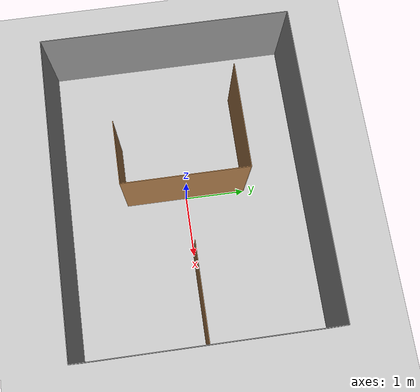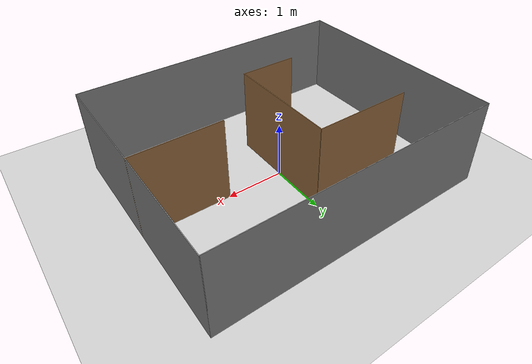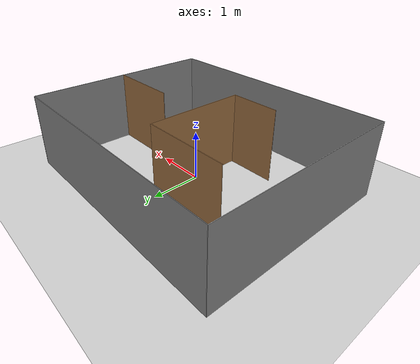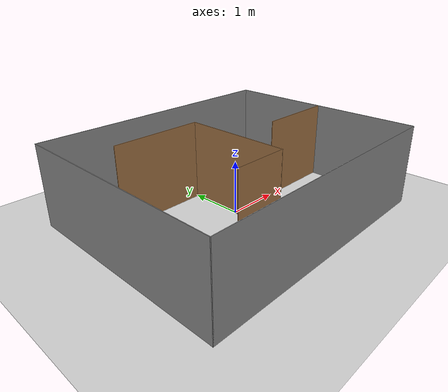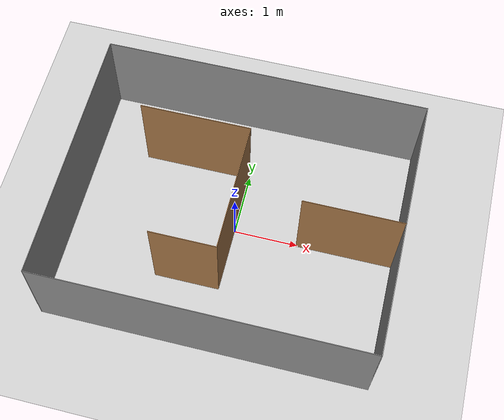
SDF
<sdf version="1.7">
 <world name="labaux">
  <light name="sun" type="directional">
   <pose>0 0 10 0 -0 0</pose>
   <diffuse>0.8 0.8 0.8 1</diffuse>
   <specular>0.2 0.2 0.2 1</specular>
   <attenuation>
    <range>1000</range>
    <constant>0.9</constant>
    <linear>0.01</linear>
    <quadratic>0.001</quadratic>
   </attenuation>
   <direction>-0.5 0.1 -0.9</direction>
   <spot><inner_angle>0</inner_angle><outer_angle>0</outer_angle><falloff>0</falloff></spot>
  </light>
  <model name="ground_plane">
   <static>1</static>
   <link name="link">
    <collision name="collision">
     <geometry><plane><normal>0 0 1</normal><size>100 100</size></plane></geometry>
     <surface>
      <contact><collide_bitmask>65535</collide_bitmask></contact>
      <friction><ode><mu>100</mu><mu2>50</mu2></ode></friction>
     </surface>
    </collision>
    <visual name="visual">
     <cast_shadows>0</cast_shadows>
     <geometry><plane><normal>0 0 1</normal><size>100 100</size></plane></geometry>
     <material>
      <script><uri>file://media/materials/scripts/gazebo.material</uri><name>Gazebo/Grey</name></script>
     </material>
    </visual>
   </link>
  </model>
  <gravity>0 0 -9.8</gravity>
  <magnetic_field>6e-06 2.3e-05 -4.2e-05</magnetic_field>
  <atmosphere type="adiabatic"/>
  <physics type="ode">
   <max_step_size>0.001</max_step_size>
   <real_time_factor>0.5</real_time_factor>
   <real_time_update_rate>500</real_time_update_rate>
  </physics>
  <scene><ambient>0.4 0.4 0.4 1</ambient><background>0.7 0.7 0.7 1</background><shadows>1</shadows></scene>
  <spherical_coordinates>
   <surface_model>EARTH_WGS84</surface_model>
   <latitude_deg>0</latitude_deg>
   <longitude_deg>0</longitude_deg>
   <elevation>0</elevation>
   <heading_deg>0</heading_deg>
  </spherical_coordinates>
  <model name="lab_aux">
   <pose>-0.009214 -0.005866 0 0 -0 0</pose>
   <link name="Wall_11">
    <collision name="Wall_11_Collision">
     <geometry><box><size>4.01 0.01 1.5</size></box></geometry>
     <pose>0 0 0.75 0 -0 0</pose>
    </collision>
    <visual name="Wall_11_Visual">
     <pose>0 0 0.75 0 -0 0</pose>
     <geometry><box><size>4.01 0.01 1.5</size></box></geometry>
     <material>
      <script><uri>file://media/materials/scripts/gazebo.material</uri><name>Gazebo/Grey</name></script>
      <ambient>1 1 1 1</ambient>
     </material>
     <meta><layer>0</layer></meta>
    </visual>
    <pose>2.5 0 0 0 -0 -1.5708</pose>
   </link>
   <link name="Wall_13">
    <collision name="Wall_13_Collision">
     <geometry><box><size>2.01 0.01 1.5</size></box></geometry>
     <pose>0 0 0.75 0 -0 0</pose>
    </collision>
    <visual name="Wall_13_Visual">
     <pose>0 0 0.75 0 -0 0</pose>
     <geometry><box><size>2.01 0.01 1.5</size></box></geometry>
     <material>
      <script><uri>file://media/materials/scripts/gazebo.material</uri><name>Gazebo/Wood</name></script>
      <ambient>1 1 1 1</ambient>
     </material>
     <meta><layer>0</layer></meta>
    </visual>
    <pose>0 0 0 0 -0 1.5708</pose>
   </link>
   <link name="Wall_15">
    <collision name="Wall_15_Collision">
     <geometry><box><size>1.71082 0.01 1.5</size></box></geometry>
     <pose>0 0 0.75 0 -0 0</pose>
    </collision>
    <visual name="Wall_15_Visual">
     <pose>0 0 0.75 0 -0 0</pose>
     <geometry><box><size>1.71082 0.01 1.5</size></box></geometry>
     <material>
      <script><uri>file://media/materials/scripts/gazebo.material</uri><name>Gazebo/Wood</name></script>
      <ambient>1 1 1 1</ambient>
     </material>
     <meta><layer>0</layer></meta>
    </visual>
    <pose>-0.85 1.007 0 0 -0 0</pose>
   </link>
   <link name="Wall_17">
    <collision name="Wall_17_Collision">
     <geometry><box><size>1.51 0.01 1.5</size></box></geometry>
     <pose>0 0 0.75 0 -0 0</pose>
    </collision>
    <visual name="Wall_17_Visual">
     <pose>0 0 0.75 0 -0 0</pose>
     <geometry><box><size>1.51 0.01 1.5</size></box></geometry>
     <material>
      <script><uri>file://media/materials/scripts/gazebo.material</uri><name>Gazebo/Wood</name></script>
      <ambient>1 1 1 1</ambient>
     </material>
     <meta><layer>0</layer></meta>
    </visual>
    <pose>1.75 0 0 0 -0 0</pose>
   </link>
   <link name="Wall_19">
    <collision name="Wall_19_Collision">
     <geometry><box><size>1.01 0.01 1.5</size></box></geometry>
     <pose>0 0 0.75 0 -0 0</pose>
    </collision>
    <visual name="Wall_19_Visual">
     <pose>0 0 0.75 0 -0 0</pose>
     <geometry><box><size>1.01 0.01 1.5</size></box></geometry>
     <material>
      <script><uri>file://media/materials/scripts/gazebo.material</uri><name>Gazebo/Wood</name></script>
      <ambient>1 1 1 1</ambient>
     </material>
     <meta><layer>0</layer></meta>
    </visual>
    <pose>-0.5 -1 0 0 -0 0</pose>
   </link>
   <link name="Wall_5">
    <collision name="Wall_5_Collision">
     <geometry><box><size>4.01 0.01 1.5</size></box></geometry>
     <pose>0 0 0.75 0 -0 0</pose>
    </collision>
    <visual name="Wall_5_Visual">
     <pose>0 0 0.75 0 -0 0</pose>
     <geometry><box><size>4.01 0.01 1.5</size></box></geometry>
     <material>
      <script><uri>file://media/materials/scripts/gazebo.material</uri><name>Gazebo/Grey</name></script>
      <ambient>1 1 1 1</ambient>
     </material>
     <meta><layer>0</layer></meta>
    </visual>
    <pose>-2.5 0 0 0 -0 1.5708</pose>
   </link>
   <link name="Wall_7">
    <collision name="Wall_7_Collision">
     <geometry><box><size>5.01 0.01 1.5</size></box></geometry>
     <pose>0 0 0.75 0 -0 0</pose>
    </collision>
    <visual name="Wall_7_Visual">
     <pose>0 0 0.75 0 -0 0</pose>
     <geometry><box><size>5.01 0.01 1.5</size></box></geometry>
     <material>
      <script><uri>file://media/materials/scripts/gazebo.material</uri><name>Gazebo/Grey</name></script>
      <ambient>1 1 1 1</ambient>
     </material>
     <meta><layer>0</layer></meta>
    </visual>
    <pose>0 -2 0 0 -0 0</pose>
   </link>
   <link name="Wall_9">
    <collision name="Wall_9_Collision">
     <geometry><box><size>5.01 0.01 1.5</size></box></geometry>
     <pose>0 0 0.75 0 -0 0</pose>
    </collision>
    <visual name="Wall_9_Visual">
     <pose>0 0 0.75 0 -0 0</pose>
     <geometry><box><size>5.01 0.01 1.5</size></box></geometry>
     <material>
      <script><uri>file://media/materials/scripts/gazebo.material</uri><name>Gazebo/Grey</name></script>
      <ambient>1 1 1 1</ambient>
     </material>
     <meta><layer>0</layer></meta>
    </visual>
    <pose>0 2 0 0 -0 0</pose>
   </link>
   <static>1</static>
  </model>
 </world>
</sdf>
